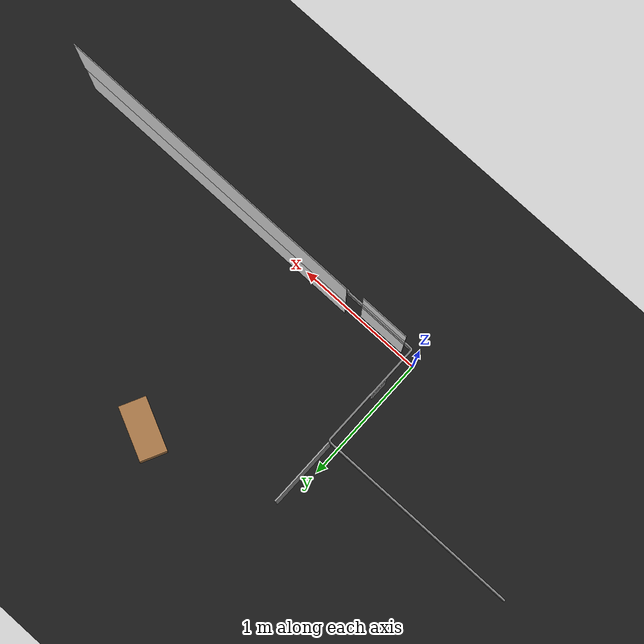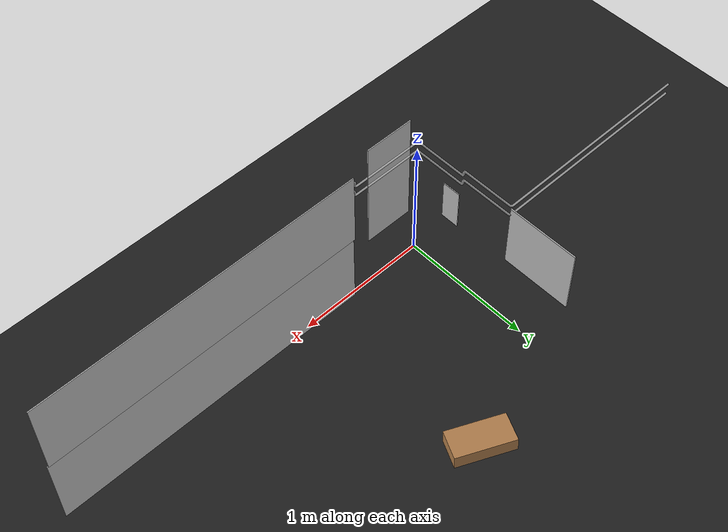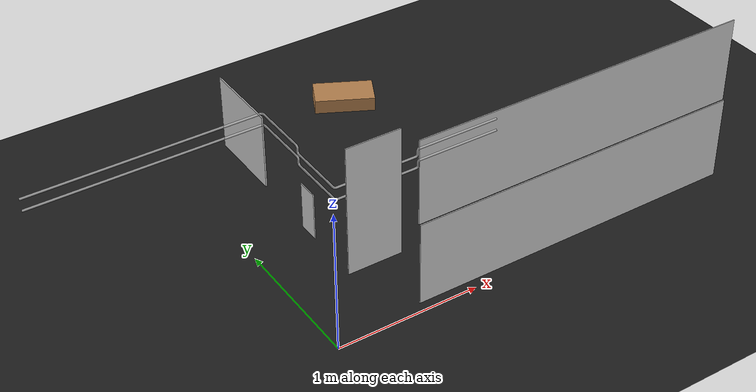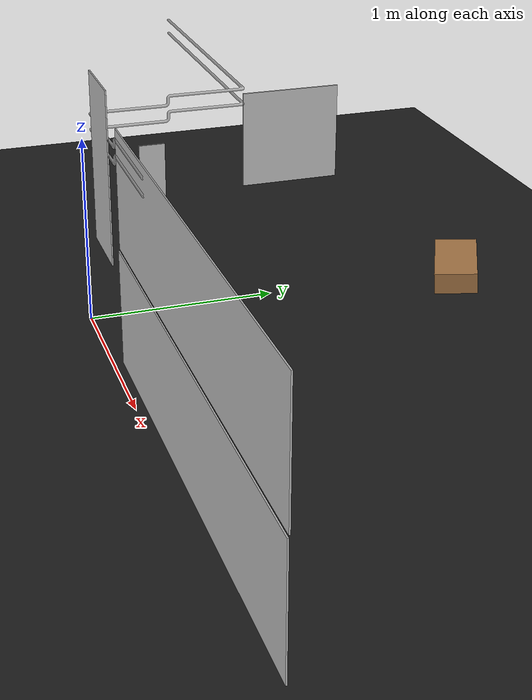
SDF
<sdf version="1.4">
 <world name="default">
  <light name="sun" type="directional">
   <pose>-1 -1 1.5 0 -0 0</pose>
   <diffuse>0.8 0.8 0.8 1</diffuse>
   <specular>0.2 0.2 0.2 1</specular>
   <attenuation>
    <range>1000</range>
    <constant>0.9</constant>
    <linear>0.01</linear>
    <quadratic>0.001</quadratic>
   </attenuation>
   <direction>-0.5 0 -1</direction>
  </light>
  <model name="ground_plane">
   <static>1</static>
   <link name="link">
    <collision name="collision">
     <geometry><plane><normal>0 0 1</normal><size>100 100</size></plane></geometry>
     <surface><friction><ode><mu>100</mu><mu2>50</mu2></ode></friction></surface>
    </collision>
    <visual name="visual">
     <cast_shadows>0</cast_shadows>
     <geometry><plane><normal>0 0 1</normal><size>100 100</size></plane></geometry>
     <material>
      <script><uri>file://media/materials/scripts/gazebo.material</uri><name>Gazebo/Black</name></script>
     </material>
    </visual>
    <velocity_decay><linear>0</linear><angular>0</angular></velocity_decay>
    <gravity>0</gravity>
   </link>
  </model>
  <physics type="ode">
   <max_step_size>0.1</max_step_size>
   <real_time_factor>1</real_time_factor>
   <real_time_update_rate>10</real_time_update_rate>
   <max_contacts>3</max_contacts>
   <gravity>0 0 -9.8</gravity>
   <ode><solver><min_step_size>0.1</min_step_size><iters>1</iters></solver></ode>
  </physics>
  <scene><ambient>1 1 1 1</ambient><background>0 0 0 1</background><shadows>1</shadows></scene>
  <model name="fire_hose_reel">
   <static>1</static>
   <link name="link">
    <visual name="visual">
     <geometry><box><size>0.8815 0.366 0.007</size></box></geometry>
     <material>
      <script>
       <uri>model://fire_hose_reel/materials/scripts</uri>
       <uri>model://fire_hose_reel/materials/textures</uri>
       <name>fire_hose_reel</name>
      </script>
     </material>
    </visual>
    <velocity_decay><linear>0</linear><angular>0</angular></velocity_decay>
    <gravity>0</gravity>
   </link>
   <pose>0.286492 0.032188 0.943069 -3.12259 -1.57079 1.55207</pose>
  </model>
  <model name="fire_extinguisher_drawing">
   <pose>0.036107 0.348617 0.787746 -0.000425 -1.5707 -3.1415</pose>
   <static>1</static>
   <link name="link">
    <visual name="visual">
     <cast_shadows>0</cast_shadows>
     <geometry><box><size>0.315 0.135 0.007</size></box></geometry>
     <material>
      <script>
       <uri>model://fire_extinguisher_drawing/materials/scripts</uri>
       <uri>model://fire_extinguisher_drawing/materials/textures</uri>
       <name>fire_extinguisher_drawing</name>
      </script>
     </material>
    </visual>
    <velocity_decay><linear>0</linear><angular>0</angular></velocity_decay>
   </link>
  </model>
  <model name="wall_pipe">
   <pose>-1.46513 0.846711 1.19986 -1.5707 5.55112e-17 -1.5707</pose>
   <static>1</static>
   <link name="link">
    <inertial><mass>10</mass></inertial>
    <visual name="visual">
     <transparency>0.2</transparency>
     <geometry><mesh><uri>model://wall_pipe/meshes/wall_pipe.stl</uri></mesh></geometry>
    </visual>
    <velocity_decay><linear>0</linear><angular>0</angular></velocity_decay>
   </link>
  </model>
  <model name="wall_pipe_2">
   <pose>-1.46205 0.846292 1.11934 -1.5707 5.55112e-17 -1.5707</pose>
   <static>1</static>
   <link name="link">
    <inertial><mass>10</mass></inertial>
    <visual name="visual">
     <transparency>0.2</transparency>
     <geometry><mesh><uri>model://wall_pipe/meshes/wall_pipe.stl</uri></mesh></geometry>
    </visual>
    <velocity_decay><linear>0</linear><angular>0</angular></velocity_decay>
   </link>
  </model>
  <spherical_coordinates>
   <surface_model>EARTH_WGS84</surface_model>
   <latitude_deg>0</latitude_deg>
   <longitude_deg>0</longitude_deg>
   <elevation>0</elevation>
   <heading_deg>0</heading_deg>
  </spherical_coordinates>
  <model name="dot_grid_0">
   <static>1</static>
   <link name="link">
    <visual name="visual">
     <cast_shadows>0</cast_shadows>
     <geometry><box><size>2.4 0.6 0.007</size></box></geometry>
     <material>
      <script>
       <uri>model://dot_grid/materials/scripts</uri>
       <uri>model://dot_grid/materials/textures</uri>
       <name>dot_grid</name>
      </script>
     </material>
    </visual>
    <velocity_decay><linear>0</linear><angular>0</angular></velocity_decay>
   </link>
   <pose>1.79937 0.044232 0.94327 -1.5693 0 0</pose>
  </model>
  <model name="dot_grid_2">
   <static>1</static>
   <link name="link">
    <visual name="visual">
     <cast_shadows>0</cast_shadows>
     <geometry><box><size>2.4 0.6 0.007</size></box></geometry>
     <material>
      <script>
       <uri>model://dot_grid/materials/scripts</uri>
       <uri>model://dot_grid/materials/textures</uri>
       <name>dot_grid</name>
      </script>
     </material>
    </visual>
    <velocity_decay><linear>0</linear><angular>0</angular></velocity_decay>
   </link>
   <pose>1.80669 0.037624 0.337855 -1.56858 0 0</pose>
  </model>
  <model name="electric_panel">
   <static>1</static>
   <link name="link">
    <visual name="visual">
     <cast_shadows>0</cast_shadows>
     <geometry><box><size>0.5 0.516 0.01</size></box></geometry>
     <material>
      <script>
       <uri>model://electric_panel/materials/scripts</uri>
       <uri>model://electric_panel/materials/textures</uri>
       <name>electric_panel</name>
      </script>
     </material>
    </visual>
    <velocity_decay><linear>0</linear><angular>0</angular></velocity_decay>
   </link>
   <pose>0.02924 1.09411 0.915525 -3.14159 1.57079 -3e-06</pose>
  </model>
  <model name="camera_projection_mapping">
   <link name="projector_link">
    <inertial>
     <mass>1</mass>
     <inertia><ixx>0.1</ixx><ixy>0</ixy><ixz>0</ixz><iyy>0.1</iyy><iyz>0</iyz><izz>0.1</izz></inertia>
    </inertial>
    <visual name="projector_link_visual">
     <geometry><box><size>0.2 0.1 0.4</size></box></geometry>
     <material><script><name>Gazebo/Wood</name><uri>__default__</uri></script></material>
    </visual>
    <velocity_decay><linear>0</linear><angular>0</angular></velocity_decay>
    <sensor name="virtual_camera" type="camera">
     <camera name="projector_head">
      <horizontal_fov>0.812196</horizontal_fov>
      <image><width>1280</width><height>800</height><format>R8G8B8</format></image>
      <clip><near>0.05</near><far>25</far></clip>
      <noise><type>gaussian</type><mean>0</mean><stddev>0</stddev></noise>
     </camera>
     <plugin name="camera_controller" filename="libgazebo_ros_camera.so">
      <alwaysOn>true</alwaysOn>
      <updateRate>30.0</updateRate>
      <cameraName>virtual_camera</cameraName>
      <imageTopicName>image_raw</imageTopicName>
      <cameraInfoTopicName>camera_info</cameraInfoTopicName>
      <frameName>camera_link</frameName>
      <CxPrime>644</CxPrime>
      <Cx>644</Cx>
      <Cy>630</Cy>
      <focalLength>389</focalLength>
      <hackBaseline>0.07</hackBaseline>
      <distortionK1>0</distortionK1>
      <distortionK2>0</distortionK2>
      <distortionK3>0</distortionK3>
      <distortionT1>0</distortionT1>
      <distortionT2>0</distortionT2>
      <robotNamespace>/</robotNamespace>
     </plugin>
    </sensor>
   </link>
   <static>1</static>
   <pose>1.03689 1.58905 0.531 -1.59 0.07 -2.02056</pose>
  </model>
 </world>
</sdf>
